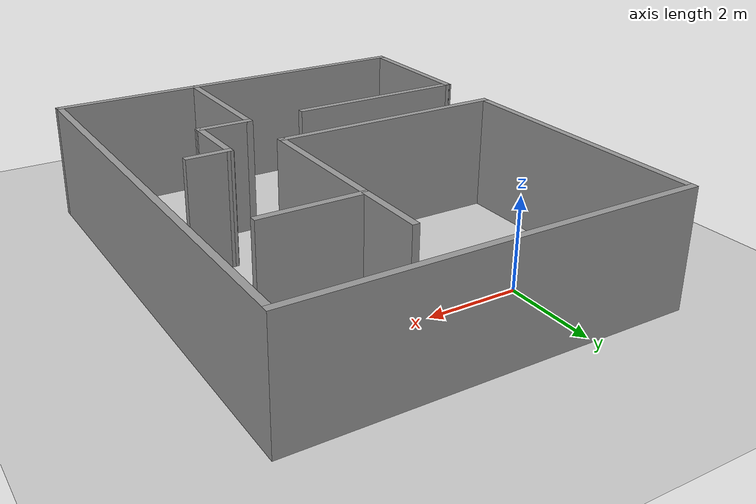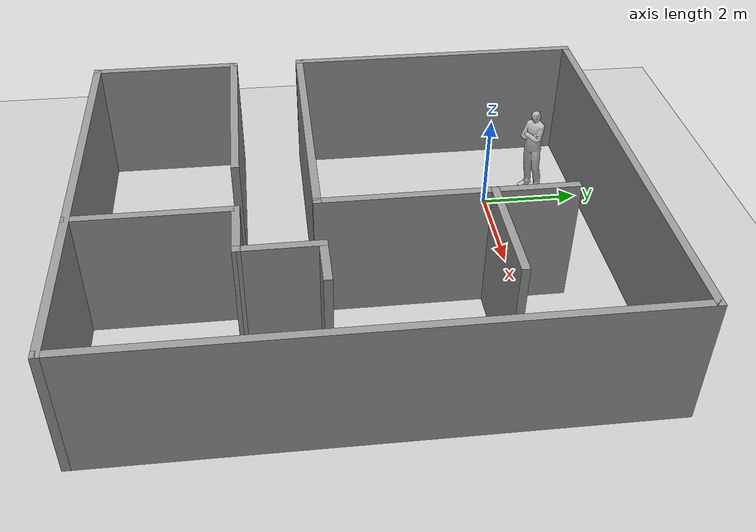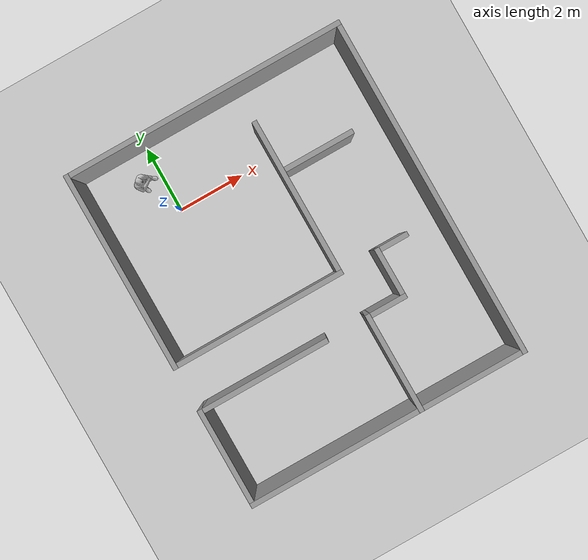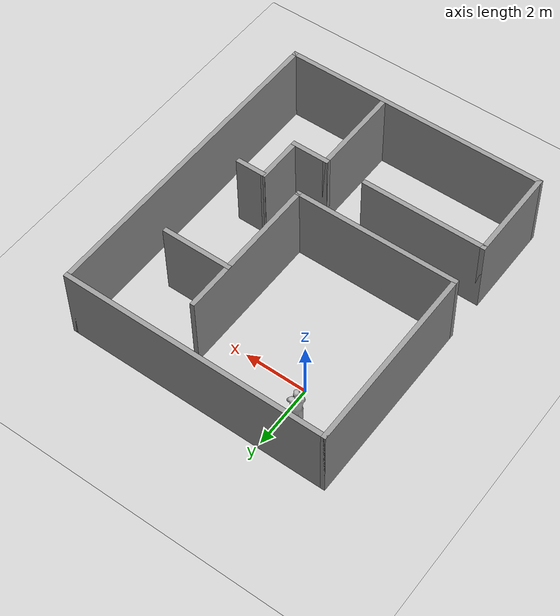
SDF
<sdf version="1.6">
 <world name="default">
  <light name="sun" type="directional">
   <pose>0 0 10 0 -0 0</pose>
   <diffuse>0.8 0.8 0.8 1</diffuse>
   <specular>0.1 0.1 0.1 1</specular>
   <attenuation>
    <range>1000</range>
    <constant>0.9</constant>
    <linear>0.01</linear>
    <quadratic>0.001</quadratic>
   </attenuation>
   <direction>-0.5 0.5 -1</direction>
  </light>
  <model name="ground_plane">
   <static>1</static>
   <link name="link">
    <collision name="collision">
     <geometry><plane><normal>0 0 1</normal><size>100 100</size></plane></geometry>
     <surface><friction><ode><mu>100</mu><mu2>50</mu2></ode></friction></surface>
    </collision>
    <visual name="visual">
     <cast_shadows>0</cast_shadows>
     <geometry><plane><normal>0 0 1</normal><size>100 100</size></plane></geometry>
     <material>
      <script><uri>file://media/materials/scripts/gazebo.material</uri><name>Gazebo/Grey</name></script>
     </material>
    </visual>
   </link>
  </model>
  <gravity>0 0 -9.8</gravity>
  <magnetic_field>6e-06 2.3e-05 -4.2e-05</magnetic_field>
  <atmosphere type="adiabatic"/>
  <physics name="default_physics" default="0" type="ode">
   <max_step_size>0.001</max_step_size>
   <real_time_factor>1</real_time_factor>
   <real_time_update_rate>1000</real_time_update_rate>
  </physics>
  <scene><ambient>0.4 0.4 0.4 1</ambient><background>0.7 0.7 0.7 1</background><shadows>1</shadows></scene>
  <spherical_coordinates>
   <surface_model>EARTH_WGS84</surface_model>
   <latitude_deg>0</latitude_deg>
   <longitude_deg>0</longitude_deg>
   <elevation>0</elevation>
   <heading_deg>0</heading_deg>
  </spherical_coordinates>
  <model name="flat_5">
   <pose>2.075 -2.98 0 0 -0 0</pose>
   <link name="Wall_0">
    <collision name="Wall_0_Collision">
     <geometry><box><size>6 0.15 2.5</size></box></geometry>
     <pose>0 0 1.25 0 -0 0</pose>
    </collision>
    <visual name="Wall_0_Visual">
     <pose>0 0 1.25 0 -0 0</pose>
     <geometry><box><size>6 0.15 2.5</size></box></geometry>
     <material>
      <script><uri>file://media/materials/scripts/gazebo.material</uri><name>Gazebo/Grey</name></script>
      <ambient>1 1 1 1</ambient>
     </material>
    </visual>
    <pose>-4.175 2.125 0 0 -0 1.5708</pose>
   </link>
   <link name="Wall_11">
    <collision name="Wall_11_Collision">
     <geometry><box><size>3 0.15 2.5</size></box></geometry>
     <pose>0 0 1.25 0 -0 0</pose>
    </collision>
    <visual name="Wall_11_Visual">
     <pose>0 0 1.25 0 -0 0</pose>
     <geometry><box><size>3 0.15 2.5</size></box></geometry>
     <material>
      <script><uri>file://media/materials/scripts/gazebo.material</uri><name>Gazebo/Grey</name></script>
      <ambient>1 1 1 1</ambient>
     </material>
    </visual>
    <pose>0.997945 -3.62329 0 0 -0 1.5708</pose>
   </link>
   <link name="Wall_13">
    <collision name="Wall_13_Collision">
     <geometry><box><size>5.25 0.15 2.5</size></box></geometry>
     <pose>0 0 1.25 0 -0 0</pose>
    </collision>
    <visual name="Wall_13_Visual">
     <pose>0 0 1.25 0 -0 0</pose>
     <geometry><box><size>5.25 0.15 2.5</size></box></geometry>
     <material>
      <script><uri>file://media/materials/scripts/gazebo.material</uri><name>Gazebo/Grey</name></script>
      <ambient>1 1 1 1</ambient>
     </material>
    </visual>
    <pose>-1.625 -0.8 0 0 -0 0</pose>
   </link>
   <link name="Wall_14">
    <collision name="Wall_14_Collision">
     <geometry><box><size>4.75 0.15 2.5</size></box></geometry>
     <pose>0 0 1.25 0 -0 0</pose>
    </collision>
    <visual name="Wall_14_Visual">
     <pose>0 0 1.25 0 -0 0</pose>
     <geometry><box><size>4.75 0.15 2.5</size></box></geometry>
     <material>
      <script><uri>file://media/materials/scripts/gazebo.material</uri><name>Gazebo/Grey</name></script>
      <ambient>1 1 1 1</ambient>
     </material>
    </visual>
    <pose>0.925 1.5 0 0 -0 1.5708</pose>
   </link>
   <link name="Wall_16">
    <collision name="Wall_16_Collision">
     <geometry><box><size>2.25 0.15 2.5</size></box></geometry>
     <pose>0 0 1.25 0 -0 0</pose>
    </collision>
    <visual name="Wall_16_Visual">
     <pose>0 0 1.25 0 -0 0</pose>
     <geometry><box><size>2.25 0.15 2.5</size></box></geometry>
     <material>
      <script><uri>file://media/materials/scripts/gazebo.material</uri><name>Gazebo/Grey</name></script>
      <ambient>1 1 1 1</ambient>
     </material>
    </visual>
    <pose>1.98224 2.33642 0 0 -0 0</pose>
   </link>
   <link name="Wall_2">
    <collision name="Wall_2_Collision">
     <geometry><box><size>8.5 0.15 2.5</size></box></geometry>
     <pose>0 0 1.25 0 -0 0</pose>
    </collision>
    <visual name="Wall_2_Visual">
     <pose>0 0 1.25 0 -0 0</pose>
     <geometry><box><size>8.5 0.15 2.5</size></box></geometry>
     <material>
      <script><uri>file://media/materials/scripts/gazebo.material</uri><name>Gazebo/Grey</name></script>
      <ambient>1 1 1 1</ambient>
     </material>
    </visual>
    <pose>0 5.05 0 0 -0 0</pose>
   </link>
   <link name="Wall_20">
    <collision name="Wall_20_Collision">
     <geometry><box><size>1.25 0.15 2.5</size></box></geometry>
     <pose>0 0 1.25 0 -0 0</pose>
    </collision>
    <visual name="Wall_20_Visual">
     <pose>0 0 1.25 0 -0 0</pose>
     <geometry><box><size>1.25 0.15 2.5</size></box></geometry>
     <material>
      <script><uri>file://media/materials/scripts/gazebo.material</uri><name>Gazebo/Grey</name></script>
      <ambient>1 1 1 1</ambient>
     </material>
    </visual>
    <pose>1.54794 -2.19829 0 0 -0 0</pose>
   </link>
   <link name="Wall_21">
    <collision name="Wall_21_Collision">
     <geometry><box><size>1.56716 0.15 2.5</size></box></geometry>
     <pose>0 0 1.25 0 -0 0</pose>
    </collision>
    <visual name="Wall_21_Visual">
     <pose>0 0 1.25 0 -0 0</pose>
     <geometry><box><size>1.56716 0.15 2.5</size></box></geometry>
     <material>
      <script><uri>file://media/materials/scripts/gazebo.material</uri><name>Gazebo/Grey</name></script>
      <ambient>1 1 1 1</ambient>
     </material>
    </visual>
    <pose>2.09543 -1.48972 0 0 -0 1.57435</pose>
   </link>
   <link name="Wall_22">
    <collision name="Wall_22_Collision">
     <geometry><box><size>1 0.15 2.5</size></box></geometry>
     <pose>0 0 1.25 0 -0 0</pose>
    </collision>
    <visual name="Wall_22_Visual">
     <pose>0 0 1.25 0 -0 0</pose>
     <geometry><box><size>1 0.15 2.5</size></box></geometry>
     <material>
      <script><uri>file://media/materials/scripts/gazebo.material</uri><name>Gazebo/Grey</name></script>
      <ambient>1 1 1 1</ambient>
     </material>
    </visual>
    <pose>2.52363 -0.781148 0 0 -0 0</pose>
   </link>
   <link name="Wall_3">
    <collision name="Wall_3_Collision">
     <geometry><box><size>10.25 0.15 2.5</size></box></geometry>
     <pose>0 0 1.25 0 -0 0</pose>
    </collision>
    <visual name="Wall_3_Visual">
     <pose>0 0 1.25 0 -0 0</pose>
     <geometry><box><size>10.25 0.15 2.5</size></box></geometry>
     <material>
      <script><uri>file://media/materials/scripts/gazebo.material</uri><name>Gazebo/Grey</name></script>
      <ambient>1 1 1 1</ambient>
     </material>
    </visual>
    <pose>4.175 0 0 0 0 -1.5708</pose>
   </link>
   <link name="Wall_5">
    <collision name="Wall_5_Collision">
     <geometry><box><size>8.5 0.15 2.5</size></box></geometry>
     <pose>0 0 1.25 0 -0 0</pose>
    </collision>
    <visual name="Wall_5_Visual">
     <pose>0 0 1.25 0 -0 0</pose>
     <geometry><box><size>8.5 0.15 2.5</size></box></geometry>
     <material>
      <script><uri>file://media/materials/scripts/gazebo.material</uri><name>Gazebo/Grey</name></script>
      <ambient>1 1 1 1</ambient>
     </material>
    </visual>
    <pose>0 -5.05 0 0 -0 3.14159</pose>
   </link>
   <link name="Wall_6">
    <collision name="Wall_6_Collision">
     <geometry><box><size>3 0.15 2.5</size></box></geometry>
     <pose>0 0 1.25 0 -0 0</pose>
    </collision>
    <visual name="Wall_6_Visual">
     <pose>0 0 1.25 0 -0 0</pose>
     <geometry><box><size>3 0.15 2.5</size></box></geometry>
     <material>
      <script><uri>file://media/materials/scripts/gazebo.material</uri><name>Gazebo/Grey</name></script>
      <ambient>1 1 1 1</ambient>
     </material>
    </visual>
    <pose>-4.175 -3.625 0 0 -0 1.5708</pose>
   </link>
   <link name="Wall_7">
    <collision name="Wall_7_Collision">
     <geometry><box><size>4 0.15 2.5</size></box></geometry>
     <pose>0 0 1.25 0 -0 0</pose>
    </collision>
    <visual name="Wall_7_Visual">
     <pose>0 0 1.25 0 -0 0</pose>
     <geometry><box><size>4 0.15 2.5</size></box></geometry>
     <material>
      <script><uri>file://media/materials/scripts/gazebo.material</uri><name>Gazebo/Grey</name></script>
      <ambient>1 1 1 1</ambient>
     </material>
    </visual>
    <pose>-2.25 -2.2 0 0 -0 0</pose>
   </link>
   <static>1</static>
  </model>
  <model name="citizen_extras_male_03">
   <static>1</static>
   <link name="link">
    <inertial>
     <mass>20</mass>
     <inertia><ixx>0.0</ixx><ixy>0.0</ixy><ixz>0.0</ixz><iyy>0.0</iyy><iyz>0.0</iyz><izz>0.0</izz></inertia>
    </inertial>
    <collision name="collision">
     <pose>-0.4 1.11 0 0 0 0.74</pose>
     <geometry><mesh><uri>model://citizen_extras_male_03/meshes/mesh.dae</uri></mesh></geometry>
    </collision>
    <visual name="visual">
     <pose>-0.4 1.11 0 0 0 0.74</pose>
     <geometry><mesh><uri>model://citizen_extras_male_03/meshes/mesh.dae</uri></mesh></geometry>
    </visual>
   </link>
  </model>
 </world>
</sdf>
